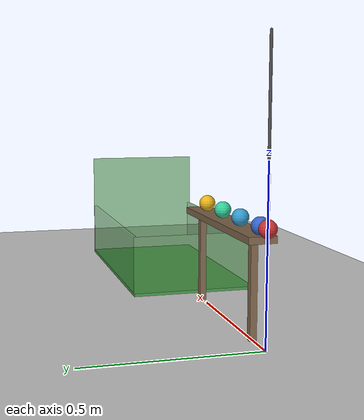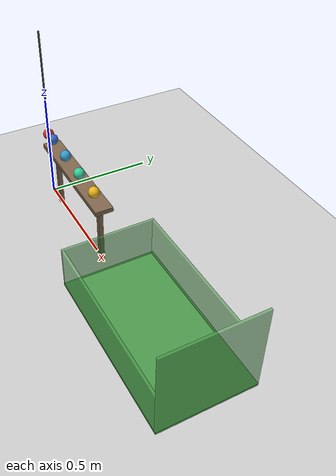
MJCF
<mujoco model="pendulum_ball_chain_box">
  <option timestep="0.002"/>

  <visual>
    <global offwidth="1280" offheight="720"/>
  </visual>

  <worldbody>
    <light name="light_main" pos="0.6 -1.5 2.5" dir="0 0.5 -1" diffuse="0.8 0.8 0.8"/>
    <geom name="floor" type="plane" pos="0 0 0" size="5 5 0.1" rgba="0.8 0.8 0.8 1"/>

    <!-- Pendulum: pivot 0.5 m above the bob's lowest point (bob center z = 0.325 at bottom) -->
    <body name="pendulum" pos="0 0 0.825">
      <joint name="pendulum_hinge" type="hinge" axis="0 1 0" pos="0 0 0"/>
      <geom name="pendulum_rod" type="capsule" fromto="0 0 0 0 0 -0.475" size="0.004" mass="0.01" contype="0" conaffinity="0" rgba="0.3 0.3 0.3 1"/>
      <geom name="pendulum_bob" type="sphere" pos="0 0 -0.5" size="0.025" mass="0.2" friction="0.3 0.005 0.0001" solref="0.02 0.15" rgba="0.8 0.2 0.2 1"/>
    </body>

    <!-- Four equal balls on the rail, centers 0.15 m apart -->
    <body name="ball1" pos="0.052 0 0.325">
      <freejoint name="ball1_free"/>
      <geom name="ball1_geom" type="sphere" size="0.025" mass="0.2" friction="0.3 0.005 0.0001" solref="0.02 0.15" rgba="0.2 0.4 0.8 1"/>
    </body>
    <body name="ball2" pos="0.202 0 0.325">
      <freejoint name="ball2_free"/>
      <geom name="ball2_geom" type="sphere" size="0.025" mass="0.2" friction="0.3 0.005 0.0001" solref="0.02 0.15" rgba="0.2 0.6 0.8 1"/>
    </body>
    <body name="ball3" pos="0.352 0 0.325">
      <freejoint name="ball3_free"/>
      <geom name="ball3_geom" type="sphere" size="0.025" mass="0.2" friction="0.3 0.005 0.0001" solref="0.02 0.15" rgba="0.2 0.8 0.6 1"/>
    </body>
    <body name="ball4" pos="0.502 0 0.325">
      <freejoint name="ball4_free"/>
      <geom name="ball4_geom" type="sphere" size="0.025" mass="0.2" friction="0.3 0.005 0.0001" solref="0.02 0.15" rgba="0.9 0.7 0.1 1"/>
    </body>

    <!-- Level rail: top surface at z = 0.3, from x = 0.03 to x = 0.6 -->
    <body name="rail" pos="0 0 0">
      <geom name="rail_beam" type="box" pos="0.315 0 0.29" size="0.285 0.04 0.01" rgba="0.5 0.4 0.3 1"/>
      <geom name="rail_leg1" type="box" pos="0.1 0 0.14" size="0.01 0.01 0.14" rgba="0.5 0.4 0.3 1"/>
      <geom name="rail_leg2" type="box" pos="0.55 0 0.14" size="0.01 0.01 0.14" rgba="0.5 0.4 0.3 1"/>
    </body>

    <!-- Catching box on the floor beyond the rail end: interior x 0.64..1.40, y -0.2..0.2 -->
    <body name="box" pos="0 0 0">
      <geom name="box_base" type="box" pos="1.02 0 0.005" size="0.39 0.21 0.005" condim="6" friction="1 0.02 0.02" rgba="0.3 0.6 0.3 1"/>
      <geom name="box_wall_near" type="box" pos="0.635 0 0.105" size="0.005 0.21 0.095" condim="6" friction="1 0.02 0.02" rgba="0.3 0.6 0.3 0.6"/>
      <geom name="box_wall_far" type="box" pos="1.405 0 0.205" size="0.005 0.21 0.195" condim="6" friction="1 0.02 0.02" rgba="0.3 0.6 0.3 0.6"/>
      <geom name="box_wall_left" type="box" pos="1.02 0.205 0.105" size="0.38 0.005 0.095" condim="6" friction="1 0.02 0.02" rgba="0.3 0.6 0.3 0.6"/>
      <geom name="box_wall_right" type="box" pos="1.02 -0.205 0.105" size="0.38 0.005 0.095" condim="6" friction="1 0.02 0.02" rgba="0.3 0.6 0.3 0.6"/>
    </body>
  </worldbody>

  <contact>
    <exclude name="exclude_pendulum_rail" body1="pendulum" body2="rail"/>
  </contact>

  <keyframe>
    <key name="start" qpos="1.5708  0.052 0 0.325 1 0 0 0  0.202 0 0.325 1 0 0 0  0.352 0 0.325 1 0 0 0  0.502 0 0.325 1 0 0 0"/>
  </keyframe>
</mujoco>
